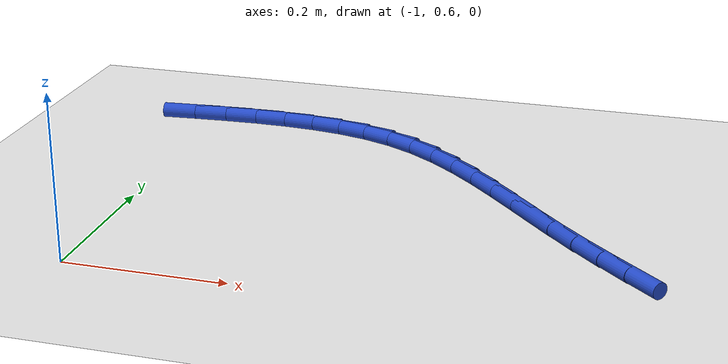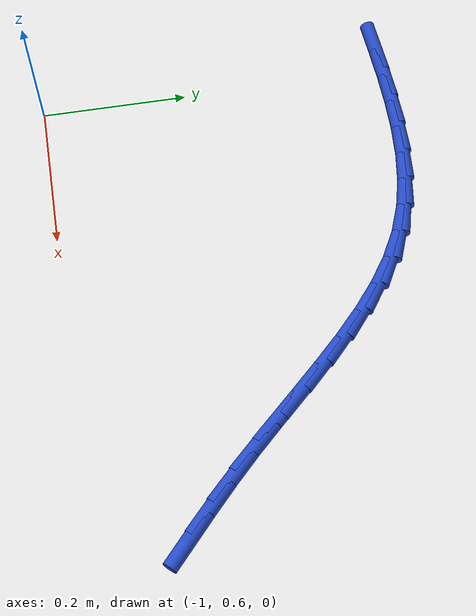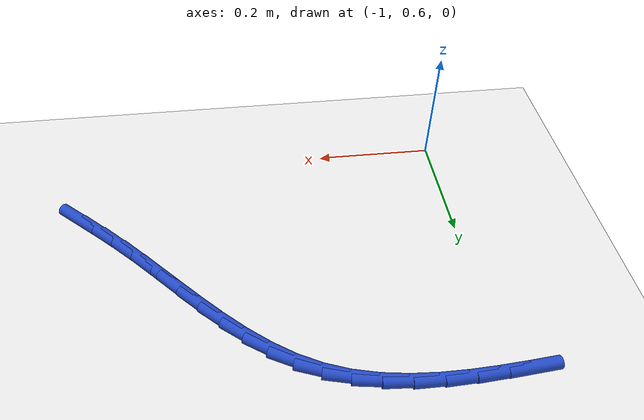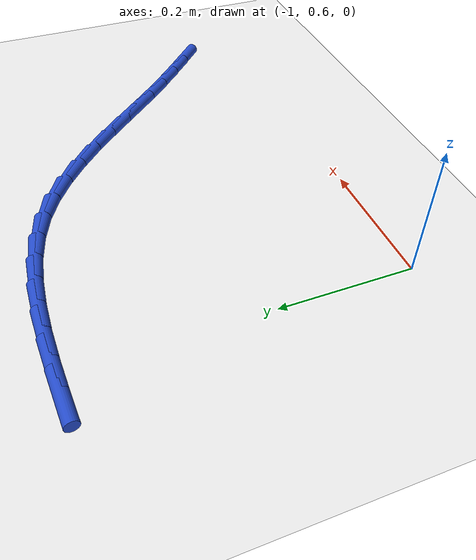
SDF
<sdf version="1.6">
 <world name="default">
  <model name="ground_plane">
   <static>1</static>
   <link name="link">
    <collision name="collision">
     <geometry><plane><normal>0 0 1</normal><size>100 100</size></plane></geometry>
     <surface><friction><ode><mu>100</mu><mu2>50</mu2></ode></friction></surface>
    </collision>
    <visual name="visual">
     <cast_shadows>0</cast_shadows>
     <geometry><plane><normal>0 0 1</normal><size>100 100</size></plane></geometry>
     <material>
      <script><uri>file://media/materials/scripts/gazebo.material</uri><name>Gazebo/WhiteGlow</name></script>
     </material>
    </visual>
   </link>
  </model>
  <model name="line">
   <link name="link_19">
    <pose>-0.37360054100294326 0.7180142805224717 0.01 0 1.57 -0.7449615728654673</pose>
    <collision name="collision">
     <geometry><cylinder><radius>0.01</radius><length>0.08</length></cylinder></geometry>
    </collision>
    <visual name="visual">
     <material>
      <script><name>Gazebo/Blue</name><uri>file://media/materials/scripts/gazebo.material</uri></script>
     </material>
     <geometry><cylinder><radius>0.01</radius><length>0.08</length></cylinder></geometry>
    </visual>
   </link>
   <link name="link_20">
    <pose>-0.4075569488002925 0.7493298717176402 0.01 0 1.57 -0.7641116700986336</pose>
    <collision name="collision">
     <geometry><cylinder><radius>0.01</radius><length>0.08</length></cylinder></geometry>
    </collision>
    <visual name="visual">
     <material>
      <script><name>Gazebo/Blue</name><uri>file://media/materials/scripts/gazebo.material</uri></script>
     </material>
     <geometry><cylinder><radius>0.01</radius><length>0.08</length></cylinder></geometry>
    </visual>
   </link>
   <link name="link_21">
    <pose>-0.4411223883864512 0.7814959073275813 0.01 0 1.57 -0.7915079339891901</pose>
    <collision name="collision">
     <geometry><cylinder><radius>0.01</radius><length>0.08</length></cylinder></geometry>
    </collision>
    <visual name="visual">
     <material>
      <script><name>Gazebo/Blue</name><uri>file://media/materials/scripts/gazebo.material</uri></script>
     </material>
     <geometry><cylinder><radius>0.01</radius><length>0.08</length></cylinder></geometry>
    </visual>
   </link>
   <link name="link_22">
    <pose>-0.47399608903926926 0.8147737839711767 0.01 0 1.57 -0.8184175871909524</pose>
    <collision name="collision">
     <geometry><cylinder><radius>0.01</radius><length>0.08</length></cylinder></geometry>
    </collision>
    <visual name="visual">
     <material>
      <script><name>Gazebo/Blue</name><uri>file://media/materials/scripts/gazebo.material</uri></script>
     </material>
     <geometry><cylinder><radius>0.01</radius><length>0.08</length></cylinder></geometry>
    </visual>
   </link>
   <link name="link_23">
    <pose>-0.5060967165724656 0.8490675119576148 0.01 0 1.57 -0.8299045081256999</pose>
    <collision name="collision">
     <geometry><cylinder><radius>0.01</radius><length>0.08</length></cylinder></geometry>
    </collision>
    <visual name="visual">
     <material>
      <script><name>Gazebo/Blue</name><uri>file://media/materials/scripts/gazebo.material</uri></script>
     </material>
     <geometry><cylinder><radius>0.01</radius><length>0.08</length></cylinder></geometry>
    </visual>
   </link>
   <link name="link_24">
    <pose>-0.5377303510854071 0.8836501375621241 0.01 0 1.57 -0.8245276934373208</pose>
    <collision name="collision">
     <geometry><cylinder><radius>0.01</radius><length>0.08</length></cylinder></geometry>
    </collision>
    <visual name="visual">
     <material>
      <script><name>Gazebo/Blue</name><uri>file://media/materials/scripts/gazebo.material</uri></script>
     </material>
     <geometry><cylinder><radius>0.01</radius><length>0.08</length></cylinder></geometry>
    </visual>
   </link>
   <link name="link_25">
    <pose>-0.5692426123155785 0.9177303106489254 0.01 0 1.57 -0.8016678981493165</pose>
    <collision name="collision">
     <geometry><cylinder><radius>0.01</radius><length>0.08</length></cylinder></geometry>
    </collision>
    <visual name="visual">
     <material>
      <script><name>Gazebo/Blue</name><uri>file://media/materials/scripts/gazebo.material</uri></script>
     </material>
     <geometry><cylinder><radius>0.01</radius><length>0.08</length></cylinder></geometry>
    </visual>
   </link>
   <link name="link_26">
    <pose>-0.6009791200004649 0.9505166810822406 0.01 0 1.57 -0.7599280719795295</pose>
    <collision name="collision">
     <geometry><cylinder><radius>0.01</radius><length>0.08</length></cylinder></geometry>
    </collision>
    <visual name="visual">
     <material>
      <script><name>Gazebo/Blue</name><uri>file://media/materials/scripts/gazebo.material</uri></script>
     </material>
     <geometry><cylinder><radius>0.01</radius><length>0.08</length></cylinder></geometry>
    </visual>
   </link>
   <link name="link_27">
    <pose>-0.6332854938775516 0.9812178987262915 0.01 0 1.57 -0.6972171529305797</pose>
    <collision name="collision">
     <geometry><cylinder><radius>0.01</radius><length>0.08</length></cylinder></geometry>
    </collision>
    <visual name="visual">
     <material>
      <script><name>Gazebo/Blue</name><uri>file://media/materials/scripts/gazebo.material</uri></script>
     </material>
     <geometry><cylinder><radius>0.01</radius><length>0.08</length></cylinder></geometry>
    </visual>
   </link>
   <link name="link_28">
    <pose>-0.666507353684323 1.009042613445299 0.01 0 1.57 -0.6110914988036711</pose>
    <collision name="collision">
     <geometry><cylinder><radius>0.01</radius><length>0.08</length></cylinder></geometry>
    </collision>
    <visual name="visual">
     <material>
      <script><name>Gazebo/Blue</name><uri>file://media/materials/scripts/gazebo.material</uri></script>
     </material>
     <geometry><cylinder><radius>0.01</radius><length>0.08</length></cylinder></geometry>
    </visual>
   </link>
   <link name="link_29">
    <pose>-0.7009903191582645 1.0331994751034852 0.01 0 1.57 -0.4996109202684271</pose>
    <collision name="collision">
     <geometry><cylinder><radius>0.01</radius><length>0.08</length></cylinder></geometry>
    </collision>
    <visual name="visual">
     <material>
      <script><name>Gazebo/Blue</name><uri>file://media/materials/scripts/gazebo.material</uri></script>
     </material>
     <geometry><cylinder><radius>0.01</radius><length>0.08</length></cylinder></geometry>
    </visual>
   </link>
   <link name="link_30">
    <pose>-0.7370800097640913 1.0528971343306763 0.01 0 1.57 -0.3694298204295683</pose>
    <collision name="collision">
     <geometry><cylinder><radius>0.01</radius><length>0.08</length></cylinder></geometry>
    </collision>
    <visual name="visual">
     <material>
      <script><name>Gazebo/Blue</name><uri>file://media/materials/scripts/gazebo.material</uri></script>
     </material>
     <geometry><cylinder><radius>0.01</radius><length>0.08</length></cylinder></geometry>
    </visual>
   </link>
   <link name="link_31">
    <pose>-0.7750334260151597 1.0675929760785206 0.01 0 1.57 -0.2489895725936515</pose>
    <collision name="collision">
     <geometry><cylinder><radius>0.01</radius><length>0.08</length></cylinder></geometry>
    </collision>
    <visual name="visual">
     <material>
      <script><name>Gazebo/Blue</name><uri>file://media/materials/scripts/gazebo.material</uri></script>
     </material>
     <geometry><cylinder><radius>0.01</radius><length>0.08</length></cylinder></geometry>
    </visual>
   </link>
   <link name="link_32">
    <pose>-0.8147684435773628 1.0776962357511082 0.01 0 1.57 -0.14757851697039848</pose>
    <collision name="collision">
     <geometry><cylinder><radius>0.01</radius><length>0.08</length></cylinder></geometry>
    </collision>
    <visual name="visual">
     <material>
      <script><name>Gazebo/Blue</name><uri>file://media/materials/scripts/gazebo.material</uri></script>
     </material>
     <geometry><cylinder><radius>0.01</radius><length>0.08</length></cylinder></geometry>
    </visual>
   </link>
   <link name="link_33">
    <pose>-0.8561218298339164 1.083843802243982 0.01 0 1.57 -0.06598349007495755</pose>
    <collision name="collision">
     <geometry><cylinder><radius>0.01</radius><length>0.08</length></cylinder></geometry>
    </collision>
    <visual name="visual">
     <material>
      <script><name>Gazebo/Blue</name><uri>file://media/materials/scripts/gazebo.material</uri></script>
     </material>
     <geometry><cylinder><radius>0.01</radius><length>0.08</length></cylinder></geometry>
    </visual>
   </link>
   <link name="link_34">
    <pose>-0.8989303521680363 1.0866725644526858 0.01 0 1.57 -0.0033298154087916683</pose>
    <collision name="collision">
     <geometry><cylinder><radius>0.01</radius><length>0.08</length></cylinder></geometry>
    </collision>
    <visual name="visual">
     <material>
      <script><name>Gazebo/Blue</name><uri>file://media/materials/scripts/gazebo.material</uri></script>
     </material>
     <geometry><cylinder><radius>0.01</radius><length>0.08</length></cylinder></geometry>
    </visual>
   </link>
   <link name="link_35">
    <pose>-0.9430307779629375 1.086819411272762 0.01 0 1.57 0.041943495557022384</pose>
    <collision name="collision">
     <geometry><cylinder><radius>0.01</radius><length>0.08</length></cylinder></geometry>
    </collision>
    <visual name="visual">
     <material>
      <script><name>Gazebo/Blue</name><uri>file://media/materials/scripts/gazebo.material</uri></script>
     </material>
     <geometry><cylinder><radius>0.01</radius><length>0.08</length></cylinder></geometry>
    </visual>
   </link>
   <link name="link_36">
    <pose>-0.9882598746018367 1.084921231599755 0.01 0 1.57 0.07145193034690786</pose>
    <collision name="collision">
     <geometry><cylinder><radius>0.01</radius><length>0.08</length></cylinder></geometry>
    </collision>
    <visual name="visual">
     <material>
      <script><name>Gazebo/Blue</name><uri>file://media/materials/scripts/gazebo.material</uri></script>
     </material>
     <geometry><cylinder><radius>0.01</radius><length>0.08</length></cylinder></geometry>
    </visual>
   </link>
   <link name="link_37">
    <pose>-1.0344544094679489 1.081614914329207 0.01 0 1.57 0.08654600794670991</pose>
    <collision name="collision">
     <geometry><cylinder><radius>0.01</radius><length>0.08</length></cylinder></geometry>
    </collision>
    <visual name="visual">
     <material>
      <script><name>Gazebo/Blue</name><uri>file://media/materials/scripts/gazebo.material</uri></script>
     </material>
     <geometry><cylinder><radius>0.01</radius><length>0.08</length></cylinder></geometry>
    </visual>
   </link>
  </model>
 </world>
</sdf>
